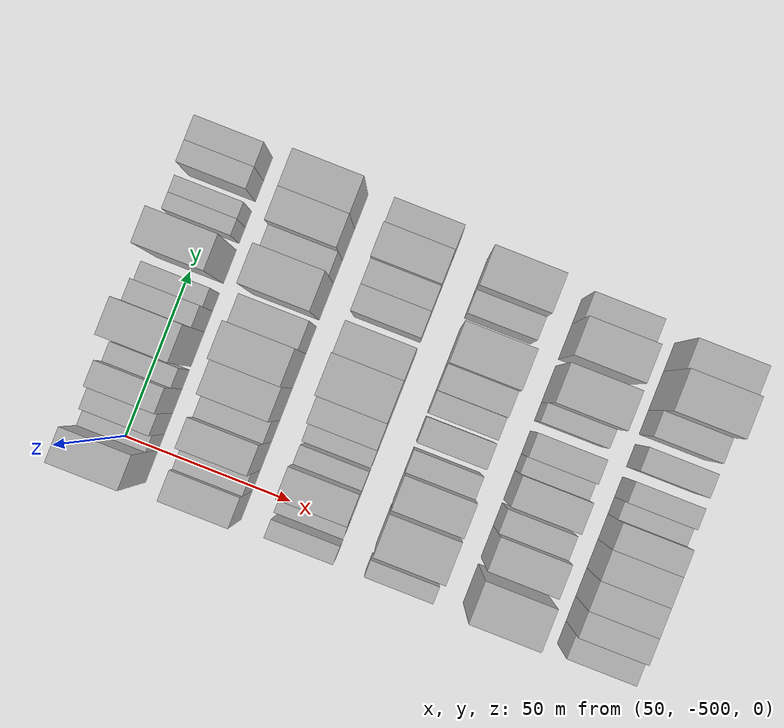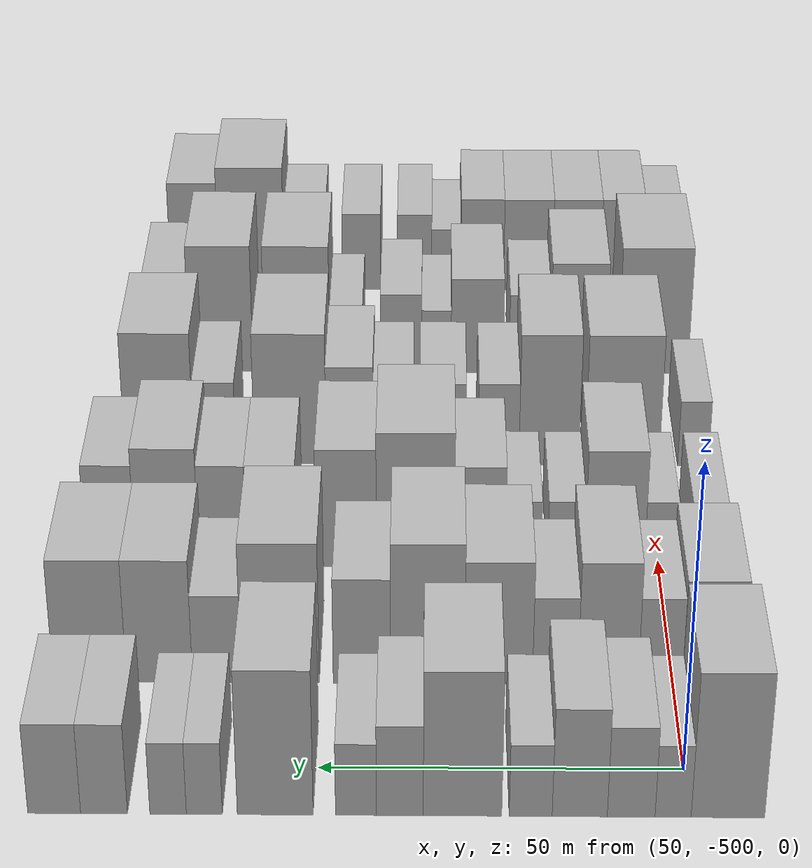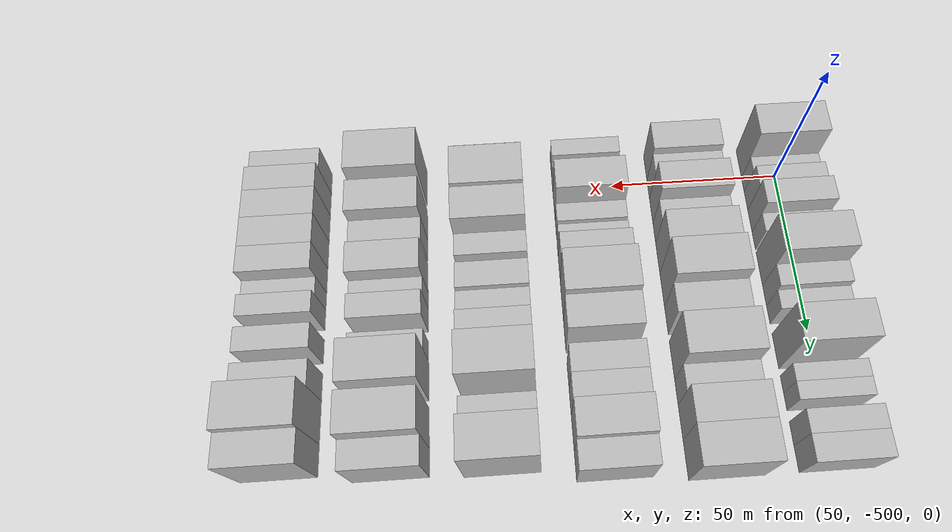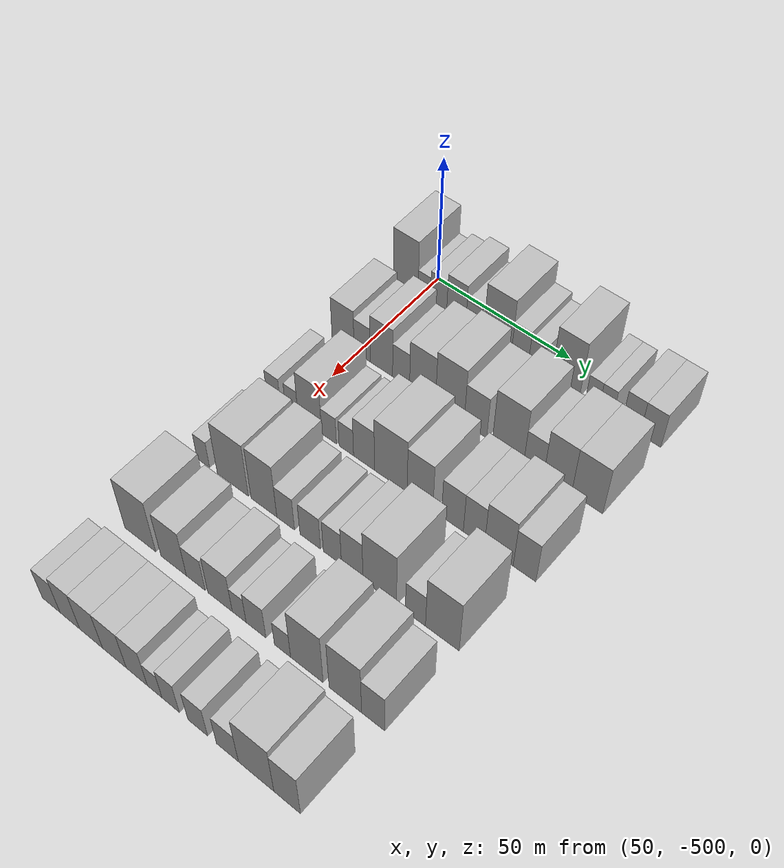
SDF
<sdf version="1.6">
 <world name="default">
  <model name="building_1">
   <static>1</static>
   <pose>50.0000 -505.0870 0 0.000000 0.000000 0.000000</pose>
   <link name="link">
    <pose>0 0 12.00 0 0 0</pose>
    <collision name="collision"><geometry><box><size>20.0000 9.8260 24.0000</size></box></geometry></collision>
    <visual name="visual">
     <cast_shadows>0</cast_shadows>
     <geometry><box><size>20.0000 9.8260 24.0000</size></box></geometry>
     <material>
      <script>
       <uri>model://HANNAS_wall/materials/scripts</uri>
       <uri>model://HANNAS_wall/materials/textures</uri>
       <name>vrc/HANNAS_wall</name>
      </script>
     </material>
    </visual>
   </link>
  </model>
  <model name="building_2">
   <static>1</static>
   <pose>50.0000 -497.7677 0 0.000000 0.000000 0.000000</pose>
   <link name="link">
    <pose>0 0 6.00 0 0 0</pose>
    <collision name="collision"><geometry><box><size>20.0000 4.8125 12.0000</size></box></geometry></collision>
    <visual name="visual">
     <cast_shadows>0</cast_shadows>
     <geometry><box><size>20.0000 4.8125 12.0000</size></box></geometry>
     <material>
      <script>
       <uri>model://HANNAS_wall/materials/scripts</uri>
       <uri>model://HANNAS_wall/materials/textures</uri>
       <name>vrc/HANNAS_wall</name>
      </script>
     </material>
    </visual>
   </link>
  </model>
  <model name="building_3">
   <static>1</static>
   <pose>50.0000 -492.1713 0 0.000000 0.000000 0.000000</pose>
   <link name="link">
    <pose>0 0 7.50 0 0 0</pose>
    <collision name="collision"><geometry><box><size>20.0000 6.3803 15.0000</size></box></geometry></collision>
    <visual name="visual">
     <cast_shadows>0</cast_shadows>
     <geometry><box><size>20.0000 6.3803 15.0000</size></box></geometry>
     <material>
      <script>
       <uri>model://HANNAS_wall/materials/scripts</uri>
       <uri>model://HANNAS_wall/materials/textures</uri>
       <name>vrc/HANNAS_wall</name>
      </script>
     </material>
    </visual>
   </link>
  </model>
  <model name="building_4">
   <static>1</static>
   <pose>50.0000 -485.2972 0 0.000000 0.000000 0.000000</pose>
   <link name="link">
    <pose>0 0 9.00 0 0 0</pose>
    <collision name="collision"><geometry><box><size>20.0000 7.3679 18.0000</size></box></geometry></collision>
    <visual name="visual">
     <cast_shadows>0</cast_shadows>
     <geometry><box><size>20.0000 7.3679 18.0000</size></box></geometry>
     <material>
      <script>
       <uri>model://HANNAS_wall/materials/scripts</uri>
       <uri>model://HANNAS_wall/materials/textures</uri>
       <name>vrc/HANNAS_wall</name>
      </script>
     </material>
    </visual>
   </link>
  </model>
  <model name="building_5">
   <static>1</static>
   <pose>50.0000 -478.7426 0 0.000000 0.000000 0.000000</pose>
   <link name="link">
    <pose>0 0 6.00 0 0 0</pose>
    <collision name="collision"><geometry><box><size>20.0000 5.7415 12.0000</size></box></geometry></collision>
    <visual name="visual">
     <cast_shadows>0</cast_shadows>
     <geometry><box><size>20.0000 5.7415 12.0000</size></box></geometry>
     <material>
      <script>
       <uri>model://HANNAS_wall/materials/scripts</uri>
       <uri>model://HANNAS_wall/materials/textures</uri>
       <name>vrc/HANNAS_wall</name>
      </script>
     </material>
    </visual>
   </link>
  </model>
  <model name="building_6">
   <static>1</static>
   <pose>50.0000 -469.6219 0 0.000000 0.000000 0.000000</pose>
   <link name="link">
    <pose>0 0 12.00 0 0 0</pose>
    <collision name="collision"><geometry><box><size>20.0000 10.4998 24.0000</size></box></geometry></collision>
    <visual name="visual">
     <cast_shadows>0</cast_shadows>
     <geometry><box><size>20.0000 10.4998 24.0000</size></box></geometry>
     <material>
      <script>
       <uri>model://HANNAS_wall/materials/scripts</uri>
       <uri>model://HANNAS_wall/materials/textures</uri>
       <name>vrc/HANNAS_wall</name>
      </script>
     </material>
    </visual>
   </link>
  </model>
  <model name="building_7">
   <static>1</static>
   <pose>50.0000 -461.2395 0 0.000000 0.000000 0.000000</pose>
   <link name="link">
    <pose>0 0 7.50 0 0 0</pose>
    <collision name="collision"><geometry><box><size>20.0000 6.2650 15.0000</size></box></geometry></collision>
    <visual name="visual">
     <cast_shadows>0</cast_shadows>
     <geometry><box><size>20.0000 6.2650 15.0000</size></box></geometry>
     <material>
      <script>
       <uri>model://HANNAS_wall/materials/scripts</uri>
       <uri>model://HANNAS_wall/materials/textures</uri>
       <name>vrc/HANNAS_wall</name>
      </script>
     </material>
    </visual>
   </link>
  </model>
  <model name="building_8">
   <static>1</static>
   <pose>50.0000 -455.3796 0 0.000000 0.000000 0.000000</pose>
   <link name="link">
    <pose>0 0 6.00 0 0 0</pose>
    <collision name="collision"><geometry><box><size>20.0000 5.4549 12.0000</size></box></geometry></collision>
    <visual name="visual">
     <cast_shadows>0</cast_shadows>
     <geometry><box><size>20.0000 5.4549 12.0000</size></box></geometry>
     <material>
      <script>
       <uri>model://HANNAS_wall/materials/scripts</uri>
       <uri>model://HANNAS_wall/materials/textures</uri>
       <name>vrc/HANNAS_wall</name>
      </script>
     </material>
    </visual>
   </link>
  </model>
  <model name="building_9">
   <static>1</static>
   <pose>50.0000 -444.5758 0 0.000000 0.000000 0.000000</pose>
   <link name="link">
    <pose>0 0 12.00 0 0 0</pose>
    <collision name="collision"><geometry><box><size>20.0000 10.1526 24.0000</size></box></geometry></collision>
    <visual name="visual">
     <cast_shadows>0</cast_shadows>
     <geometry><box><size>20.0000 10.1526 24.0000</size></box></geometry>
     <material>
      <script>
       <uri>model://HANNAS_wall/materials/scripts</uri>
       <uri>model://HANNAS_wall/materials/textures</uri>
       <name>vrc/HANNAS_wall</name>
      </script>
     </material>
    </visual>
   </link>
  </model>
  <model name="building_10">
   <static>1</static>
   <pose>50.0000 -435.0902 0 0.000000 0.000000 0.000000</pose>
   <link name="link">
    <pose>0 0 6.00 0 0 0</pose>
    <collision name="collision"><geometry><box><size>20.0000 4.8186 12.0000</size></box></geometry></collision>
    <visual name="visual">
     <cast_shadows>0</cast_shadows>
     <geometry><box><size>20.0000 4.8186 12.0000</size></box></geometry>
     <material>
      <script>
       <uri>model://HANNAS_wall/materials/scripts</uri>
       <uri>model://HANNAS_wall/materials/textures</uri>
       <name>vrc/HANNAS_wall</name>
      </script>
     </material>
    </visual>
   </link>
  </model>
  <model name="building_11">
   <static>1</static>
   <pose>50.0000 -430.2362 0 0.000000 0.000000 0.000000</pose>
   <link name="link">
    <pose>0 0 6.00 0 0 0</pose>
    <collision name="collision"><geometry><box><size>20.0000 4.8894 12.0000</size></box></geometry></collision>
    <visual name="visual">
     <cast_shadows>0</cast_shadows>
     <geometry><box><size>20.0000 4.8894 12.0000</size></box></geometry>
     <material>
      <script>
       <uri>model://HANNAS_wall/materials/scripts</uri>
       <uri>model://HANNAS_wall/materials/textures</uri>
       <name>vrc/HANNAS_wall</name>
      </script>
     </material>
    </visual>
   </link>
  </model>
  <model name="building_12">
   <static>1</static>
   <pose>50.0000 -421.6519 0 0.000000 0.000000 0.000000</pose>
   <link name="link">
    <pose>0 0 7.50 0 0 0</pose>
    <collision name="collision"><geometry><box><size>20.0000 6.2792 15.0000</size></box></geometry></collision>
    <visual name="visual">
     <cast_shadows>0</cast_shadows>
     <geometry><box><size>20.0000 6.2792 15.0000</size></box></geometry>
     <material>
      <script>
       <uri>model://HANNAS_wall/materials/scripts</uri>
       <uri>model://HANNAS_wall/materials/textures</uri>
       <name>vrc/HANNAS_wall</name>
      </script>
     </material>
    </visual>
   </link>
  </model>
  <model name="building_13">
   <static>1</static>
   <pose>50.0000 -414.9698 0 0.000000 0.000000 0.000000</pose>
   <link name="link">
    <pose>0 0 7.50 0 0 0</pose>
    <collision name="collision"><geometry><box><size>20.0000 7.0849 15.0000</size></box></geometry></collision>
    <visual name="visual">
     <cast_shadows>0</cast_shadows>
     <geometry><box><size>20.0000 7.0849 15.0000</size></box></geometry>
     <material>
      <script>
       <uri>model://HANNAS_wall/materials/scripts</uri>
       <uri>model://HANNAS_wall/materials/textures</uri>
       <name>vrc/HANNAS_wall</name>
      </script>
     </material>
    </visual>
   </link>
  </model>
  <model name="building_116">
   <static>1</static>
   <pose>79.0000 -505.6173 0 0.000000 0.000000 0.000000</pose>
   <link name="link">
    <pose>0 0 9.00 0 0 0</pose>
    <collision name="collision"><geometry><box><size>20.0000 8.7653 18.0000</size></box></geometry></collision>
    <visual name="visual">
     <cast_shadows>0</cast_shadows>
     <geometry><box><size>20.0000 8.7653 18.0000</size></box></geometry>
     <material>
      <script>
       <uri>model://HANNAS_wall/materials/scripts</uri>
       <uri>model://HANNAS_wall/materials/textures</uri>
       <name>vrc/HANNAS_wall</name>
      </script>
     </material>
    </visual>
   </link>
  </model>
  <model name="building_117">
   <static>1</static>
   <pose>79.0000 -498.0807 0 0.000000 0.000000 0.000000</pose>
   <link name="link">
    <pose>0 0 7.50 0 0 0</pose>
    <collision name="collision"><geometry><box><size>20.0000 6.3080 15.0000</size></box></geometry></collision>
    <visual name="visual">
     <cast_shadows>0</cast_shadows>
     <geometry><box><size>20.0000 6.3080 15.0000</size></box></geometry>
     <material>
      <script>
       <uri>model://HANNAS_wall/materials/scripts</uri>
       <uri>model://HANNAS_wall/materials/textures</uri>
       <name>vrc/HANNAS_wall</name>
      </script>
     </material>
    </visual>
   </link>
  </model>
  <model name="building_118">
   <static>1</static>
   <pose>79.0000 -490.6231 0 0.000000 0.000000 0.000000</pose>
   <link name="link">
    <pose>0 0 10.50 0 0 0</pose>
    <collision name="collision"><geometry><box><size>20.0000 8.6072 21.0000</size></box></geometry></collision>
    <visual name="visual">
     <cast_shadows>0</cast_shadows>
     <geometry><box><size>20.0000 8.6072 21.0000</size></box></geometry>
     <material>
      <script>
       <uri>model://HANNAS_wall/materials/scripts</uri>
       <uri>model://HANNAS_wall/materials/textures</uri>
       <name>vrc/HANNAS_wall</name>
      </script>
     </material>
    </visual>
   </link>
  </model>
  <model name="building_119">
   <static>1</static>
   <pose>79.0000 -483.0925 0 0.000000 0.000000 0.000000</pose>
   <link name="link">
    <pose>0 0 7.50 0 0 0</pose>
    <collision name="collision"><geometry><box><size>20.0000 6.4540 15.0000</size></box></geometry></collision>
    <visual name="visual">
     <cast_shadows>0</cast_shadows>
     <geometry><box><size>20.0000 6.4540 15.0000</size></box></geometry>
     <material>
      <script>
       <uri>model://HANNAS_wall/materials/scripts</uri>
       <uri>model://HANNAS_wall/materials/textures</uri>
       <name>vrc/HANNAS_wall</name>
      </script>
     </material>
    </visual>
   </link>
  </model>
  <model name="building_120">
   <static>1</static>
   <pose>79.0000 -475.0134 0 0.000000 0.000000 0.000000</pose>
   <link name="link">
    <pose>0 0 10.50 0 0 0</pose>
    <collision name="collision"><geometry><box><size>20.0000 9.7041 21.0000</size></box></geometry></collision>
    <visual name="visual">
     <cast_shadows>0</cast_shadows>
     <geometry><box><size>20.0000 9.7041 21.0000</size></box></geometry>
     <material>
      <script>
       <uri>model://HANNAS_wall/materials/scripts</uri>
       <uri>model://HANNAS_wall/materials/textures</uri>
       <name>vrc/HANNAS_wall</name>
      </script>
     </material>
    </visual>
   </link>
  </model>
  <model name="building_121">
   <static>1</static>
   <pose>79.0000 -464.8946 0 0.000000 0.000000 0.000000</pose>
   <link name="link">
    <pose>0 0 12.00 0 0 0</pose>
    <collision name="collision"><geometry><box><size>20.0000 10.5334 24.0000</size></box></geometry></collision>
    <visual name="visual">
     <cast_shadows>0</cast_shadows>
     <geometry><box><size>20.0000 10.5334 24.0000</size></box></geometry>
     <material>
      <script>
       <uri>model://HANNAS_wall/materials/scripts</uri>
       <uri>model://HANNAS_wall/materials/textures</uri>
       <name>vrc/HANNAS_wall</name>
      </script>
     </material>
    </visual>
   </link>
  </model>
  <model name="building_122">
   <static>1</static>
   <pose>79.0000 -455.5403 0 0.000000 0.000000 0.000000</pose>
   <link name="link">
    <pose>0 0 9.00 0 0 0</pose>
    <collision name="collision"><geometry><box><size>20.0000 8.1752 18.0000</size></box></geometry></collision>
    <visual name="visual">
     <cast_shadows>0</cast_shadows>
     <geometry><box><size>20.0000 8.1752 18.0000</size></box></geometry>
     <material>
      <script>
       <uri>model://HANNAS_wall/materials/scripts</uri>
       <uri>model://HANNAS_wall/materials/textures</uri>
       <name>vrc/HANNAS_wall</name>
      </script>
     </material>
    </visual>
   </link>
  </model>
  <model name="building_123">
   <static>1</static>
   <pose>79.0000 -443.8803 0 0.000000 0.000000 0.000000</pose>
   <link name="link">
    <pose>0 0 12.00 0 0 0</pose>
    <collision name="collision"><geometry><box><size>20.0000 11.1447 24.0000</size></box></geometry></collision>
    <visual name="visual">
     <cast_shadows>0</cast_shadows>
     <geometry><box><size>20.0000 11.1447 24.0000</size></box></geometry>
     <material>
      <script>
       <uri>model://HANNAS_wall/materials/scripts</uri>
       <uri>model://HANNAS_wall/materials/textures</uri>
       <name>vrc/HANNAS_wall</name>
      </script>
     </material>
    </visual>
   </link>
  </model>
  <model name="building_124">
   <static>1</static>
   <pose>79.0000 -434.8327 0 0.000000 0.000000 0.000000</pose>
   <link name="link">
    <pose>0 0 7.50 0 0 0</pose>
    <collision name="collision"><geometry><box><size>20.0000 6.9504 15.0000</size></box></geometry></collision>
    <visual name="visual">
     <cast_shadows>0</cast_shadows>
     <geometry><box><size>20.0000 6.9504 15.0000</size></box></geometry>
     <material>
      <script>
       <uri>model://HANNAS_wall/materials/scripts</uri>
       <uri>model://HANNAS_wall/materials/textures</uri>
       <name>vrc/HANNAS_wall</name>
      </script>
     </material>
    </visual>
   </link>
  </model>
  <model name="building_125">
   <static>1</static>
   <pose>79.0000 -426.6256 0 0.000000 0.000000 0.000000</pose>
   <link name="link">
    <pose>0 0 10.50 0 0 0</pose>
    <collision name="collision"><geometry><box><size>20.0000 9.4638 21.0000</size></box></geometry></collision>
    <visual name="visual">
     <cast_shadows>0</cast_shadows>
     <geometry><box><size>20.0000 9.4638 21.0000</size></box></geometry>
     <material>
      <script>
       <uri>model://HANNAS_wall/materials/scripts</uri>
       <uri>model://HANNAS_wall/materials/textures</uri>
       <name>vrc/HANNAS_wall</name>
      </script>
     </material>
    </visual>
   </link>
  </model>
  <model name="building_126">
   <static>1</static>
   <pose>79.0000 -416.6605 0 0.000000 0.000000 0.000000</pose>
   <link name="link">
    <pose>0 0 10.50 0 0 0</pose>
    <collision name="collision"><geometry><box><size>20.0000 10.4664 21.0000</size></box></geometry></collision>
    <visual name="visual">
     <cast_shadows>0</cast_shadows>
     <geometry><box><size>20.0000 10.4664 21.0000</size></box></geometry>
     <material>
      <script>
       <uri>model://HANNAS_wall/materials/scripts</uri>
       <uri>model://HANNAS_wall/materials/textures</uri>
       <name>vrc/HANNAS_wall</name>
      </script>
     </material>
    </visual>
   </link>
  </model>
  <model name="building_219">
   <static>1</static>
   <pose>108.0000 -507.3230 0 0.000000 0.000000 0.000000</pose>
   <link name="link">
    <pose>0 0 6.00 0 0 0</pose>
    <collision name="collision"><geometry><box><size>20.0000 5.3541 12.0000</size></box></geometry></collision>
    <visual name="visual">
     <cast_shadows>0</cast_shadows>
     <geometry><box><size>20.0000 5.3541 12.0000</size></box></geometry>
     <material>
      <script>
       <uri>model://HANNAS_wall/materials/scripts</uri>
       <uri>model://HANNAS_wall/materials/textures</uri>
       <name>vrc/HANNAS_wall</name>
      </script>
     </material>
    </visual>
   </link>
  </model>
  <model name="building_220">
   <static>1</static>
   <pose>108.0000 -500.1919 0 0.000000 0.000000 0.000000</pose>
   <link name="link">
    <pose>0 0 6.00 0 0 0</pose>
    <collision name="collision"><geometry><box><size>20.0000 4.9080 12.0000</size></box></geometry></collision>
    <visual name="visual">
     <cast_shadows>0</cast_shadows>
     <geometry><box><size>20.0000 4.9080 12.0000</size></box></geometry>
     <material>
      <script>
       <uri>model://HANNAS_wall/materials/scripts</uri>
       <uri>model://HANNAS_wall/materials/textures</uri>
       <name>vrc/HANNAS_wall</name>
      </script>
     </material>
    </visual>
   </link>
  </model>
  <model name="building_221">
   <static>1</static>
   <pose>108.0000 -493.2043 0 0.000000 0.000000 0.000000</pose>
   <link name="link">
    <pose>0 0 10.50 0 0 0</pose>
    <collision name="collision"><geometry><box><size>20.0000 9.0672 21.0000</size></box></geometry></collision>
    <visual name="visual">
     <cast_shadows>0</cast_shadows>
     <geometry><box><size>20.0000 9.0672 21.0000</size></box></geometry>
     <material>
      <script>
       <uri>model://HANNAS_wall/materials/scripts</uri>
       <uri>model://HANNAS_wall/materials/textures</uri>
       <name>vrc/HANNAS_wall</name>
      </script>
     </material>
    </visual>
   </link>
  </model>
  <model name="building_222">
   <static>1</static>
   <pose>108.0000 -485.8665 0 0.000000 0.000000 0.000000</pose>
   <link name="link">
    <pose>0 0 6.00 0 0 0</pose>
    <collision name="collision"><geometry><box><size>20.0000 5.6085 12.0000</size></box></geometry></collision>
    <visual name="visual">
     <cast_shadows>0</cast_shadows>
     <geometry><box><size>20.0000 5.6085 12.0000</size></box></geometry>
     <material>
      <script>
       <uri>model://HANNAS_wall/materials/scripts</uri>
       <uri>model://HANNAS_wall/materials/textures</uri>
       <name>vrc/HANNAS_wall</name>
      </script>
     </material>
    </visual>
   </link>
  </model>
  <model name="building_223">
   <static>1</static>
   <pose>108.0000 -479.3562 0 0.000000 0.000000 0.000000</pose>
   <link name="link">
    <pose>0 0 6.00 0 0 0</pose>
    <collision name="collision"><geometry><box><size>20.0000 5.4122 12.0000</size></box></geometry></collision>
    <visual name="visual">
     <cast_shadows>0</cast_shadows>
     <geometry><box><size>20.0000 5.4122 12.0000</size></box></geometry>
     <material>
      <script>
       <uri>model://HANNAS_wall/materials/scripts</uri>
       <uri>model://HANNAS_wall/materials/textures</uri>
       <name>vrc/HANNAS_wall</name>
      </script>
     </material>
    </visual>
   </link>
  </model>
  <model name="building_224">
   <static>1</static>
   <pose>108.0000 -472.7793 0 0.000000 0.000000 0.000000</pose>
   <link name="link">
    <pose>0 0 9.00 0 0 0</pose>
    <collision name="collision"><geometry><box><size>20.0000 7.7418 18.0000</size></box></geometry></collision>
    <visual name="visual">
     <cast_shadows>0</cast_shadows>
     <geometry><box><size>20.0000 7.7418 18.0000</size></box></geometry>
     <material>
      <script>
       <uri>model://HANNAS_wall/materials/scripts</uri>
       <uri>model://HANNAS_wall/materials/textures</uri>
       <name>vrc/HANNAS_wall</name>
      </script>
     </material>
    </visual>
   </link>
  </model>
  <model name="building_225">
   <static>1</static>
   <pose>108.0000 -463.0128 0 0.000000 0.000000 0.000000</pose>
   <link name="link">
    <pose>0 0 12.00 0 0 0</pose>
    <collision name="collision"><geometry><box><size>20.0000 11.7911 24.0000</size></box></geometry></collision>
    <visual name="visual">
     <cast_shadows>0</cast_shadows>
     <geometry><box><size>20.0000 11.7911 24.0000</size></box></geometry>
     <material>
      <script>
       <uri>model://HANNAS_wall/materials/scripts</uri>
       <uri>model://HANNAS_wall/materials/textures</uri>
       <name>vrc/HANNAS_wall</name>
      </script>
     </material>
    </visual>
   </link>
  </model>
  <model name="building_226">
   <static>1</static>
   <pose>108.0000 -452.5363 0 0.000000 0.000000 0.000000</pose>
   <link name="link">
    <pose>0 0 10.50 0 0 0</pose>
    <collision name="collision"><geometry><box><size>20.0000 9.1619 21.0000</size></box></geometry></collision>
    <visual name="visual">
     <cast_shadows>0</cast_shadows>
     <geometry><box><size>20.0000 9.1619 21.0000</size></box></geometry>
     <material>
      <script>
       <uri>model://HANNAS_wall/materials/scripts</uri>
       <uri>model://HANNAS_wall/materials/textures</uri>
       <name>vrc/HANNAS_wall</name>
      </script>
     </material>
    </visual>
   </link>
  </model>
  <model name="building_227">
   <static>1</static>
   <pose>108.0000 -441.1657 0 0.000000 0.000000 0.000000</pose>
   <link name="link">
    <pose>0 0 9.00 0 0 0</pose>
    <collision name="collision"><geometry><box><size>20.0000 7.5793 18.0000</size></box></geometry></collision>
    <visual name="visual">
     <cast_shadows>0</cast_shadows>
     <geometry><box><size>20.0000 7.5793 18.0000</size></box></geometry>
     <material>
      <script>
       <uri>model://HANNAS_wall/materials/scripts</uri>
       <uri>model://HANNAS_wall/materials/textures</uri>
       <name>vrc/HANNAS_wall</name>
      </script>
     </material>
    </visual>
   </link>
  </model>
  <model name="building_228">
   <static>1</static>
   <pose>108.0000 -433.7669 0 0.000000 0.000000 0.000000</pose>
   <link name="link">
    <pose>0 0 9.00 0 0 0</pose>
    <collision name="collision"><geometry><box><size>20.0000 7.2183 18.0000</size></box></geometry></collision>
    <visual name="visual">
     <cast_shadows>0</cast_shadows>
     <geometry><box><size>20.0000 7.2183 18.0000</size></box></geometry>
     <material>
      <script>
       <uri>model://HANNAS_wall/materials/scripts</uri>
       <uri>model://HANNAS_wall/materials/textures</uri>
       <name>vrc/HANNAS_wall</name>
      </script>
     </material>
    </visual>
   </link>
  </model>
  <model name="building_229">
   <static>1</static>
   <pose>108.0000 -425.3324 0 0.000000 0.000000 0.000000</pose>
   <link name="link">
    <pose>0 0 10.50 0 0 0</pose>
    <collision name="collision"><geometry><box><size>20.0000 9.6509 21.0000</size></box></geometry></collision>
    <visual name="visual">
     <cast_shadows>0</cast_shadows>
     <geometry><box><size>20.0000 9.6509 21.0000</size></box></geometry>
     <material>
      <script>
       <uri>model://HANNAS_wall/materials/scripts</uri>
       <uri>model://HANNAS_wall/materials/textures</uri>
       <name>vrc/HANNAS_wall</name>
      </script>
     </material>
    </visual>
   </link>
  </model>
  <model name="building_230">
   <static>1</static>
   <pose>108.0000 -416.7514 0 0.000000 0.000000 0.000000</pose>
   <link name="link">
    <pose>0 0 9.00 0 0 0</pose>
    <collision name="collision"><geometry><box><size>20.0000 7.5111 18.0000</size></box></geometry></collision>
    <visual name="visual">
     <cast_shadows>0</cast_shadows>
     <geometry><box><size>20.0000 7.5111 18.0000</size></box></geometry>
     <material>
      <script>
       <uri>model://HANNAS_wall/materials/scripts</uri>
       <uri>model://HANNAS_wall/materials/textures</uri>
       <name>vrc/HANNAS_wall</name>
      </script>
     </material>
    </visual>
   </link>
  </model>
  <model name="building_331">
   <static>1</static>
   <pose>137.0000 -507.5297 0 0.000000 0.000000 0.000000</pose>
   <link name="link">
    <pose>0 0 6.00 0 0 0</pose>
    <collision name="collision"><geometry><box><size>20.0000 4.9405 12.0000</size></box></geometry></collision>
    <visual name="visual">
     <cast_shadows>0</cast_shadows>
     <geometry><box><size>20.0000 4.9405 12.0000</size></box></geometry>
     <material>
      <script>
       <uri>model://HANNAS_wall/materials/scripts</uri>
       <uri>model://HANNAS_wall/materials/textures</uri>
       <name>vrc/HANNAS_wall</name>
      </script>
     </material>
    </visual>
   </link>
  </model>
  <model name="building_332">
   <static>1</static>
   <pose>137.0000 -496.1003 0 0.000000 0.000000 0.000000</pose>
   <link name="link">
    <pose>0 0 12.00 0 0 0</pose>
    <collision name="collision"><geometry><box><size>20.0000 11.9184 24.0000</size></box></geometry></collision>
    <visual name="visual">
     <cast_shadows>0</cast_shadows>
     <geometry><box><size>20.0000 11.9184 24.0000</size></box></geometry>
     <material>
      <script>
       <uri>model://HANNAS_wall/materials/scripts</uri>
       <uri>model://HANNAS_wall/materials/textures</uri>
       <name>vrc/HANNAS_wall</name>
      </script>
     </material>
    </visual>
   </link>
  </model>
  <model name="building_333">
   <static>1</static>
   <pose>137.0000 -484.3216 0 0.000000 0.000000 0.000000</pose>
   <link name="link">
    <pose>0 0 12.00 0 0 0</pose>
    <collision name="collision"><geometry><box><size>20.0000 9.6389 24.0000</size></box></geometry></collision>
    <visual name="visual">
     <cast_shadows>0</cast_shadows>
     <geometry><box><size>20.0000 9.6389 24.0000</size></box></geometry>
     <material>
      <script>
       <uri>model://HANNAS_wall/materials/scripts</uri>
       <uri>model://HANNAS_wall/materials/textures</uri>
       <name>vrc/HANNAS_wall</name>
      </script>
     </material>
    </visual>
   </link>
  </model>
  <model name="building_334">
   <static>1</static>
   <pose>137.0000 -476.2368 0 0.000000 0.000000 0.000000</pose>
   <link name="link">
    <pose>0 0 7.50 0 0 0</pose>
    <collision name="collision"><geometry><box><size>20.0000 6.5307 15.0000</size></box></geometry></collision>
    <visual name="visual">
     <cast_shadows>0</cast_shadows>
     <geometry><box><size>20.0000 6.5307 15.0000</size></box></geometry>
     <material>
      <script>
       <uri>model://HANNAS_wall/materials/scripts</uri>
       <uri>model://HANNAS_wall/materials/textures</uri>
       <name>vrc/HANNAS_wall</name>
      </script>
     </material>
    </visual>
   </link>
  </model>
  <model name="building_335">
   <static>1</static>
   <pose>137.0000 -467.2595 0 0.000000 0.000000 0.000000</pose>
   <link name="link">
    <pose>0 0 7.50 0 0 0</pose>
    <collision name="collision"><geometry><box><size>20.0000 7.4240 15.0000</size></box></geometry></collision>
    <visual name="visual">
     <cast_shadows>0</cast_shadows>
     <geometry><box><size>20.0000 7.4240 15.0000</size></box></geometry>
     <material>
      <script>
       <uri>model://HANNAS_wall/materials/scripts</uri>
       <uri>model://HANNAS_wall/materials/textures</uri>
       <name>vrc/HANNAS_wall</name>
      </script>
     </material>
    </visual>
   </link>
  </model>
  <model name="building_336">
   <static>1</static>
   <pose>137.0000 -459.3119 0 0.000000 0.000000 0.000000</pose>
   <link name="link">
    <pose>0 0 7.50 0 0 0</pose>
    <collision name="collision"><geometry><box><size>20.0000 6.4711 15.0000</size></box></geometry></collision>
    <visual name="visual">
     <cast_shadows>0</cast_shadows>
     <geometry><box><size>20.0000 6.4711 15.0000</size></box></geometry>
     <material>
      <script>
       <uri>model://HANNAS_wall/materials/scripts</uri>
       <uri>model://HANNAS_wall/materials/textures</uri>
       <name>vrc/HANNAS_wall</name>
      </script>
     </material>
    </visual>
   </link>
  </model>
  <model name="building_337">
   <static>1</static>
   <pose>137.0000 -452.3010 0 0.000000 0.000000 0.000000</pose>
   <link name="link">
    <pose>0 0 9.00 0 0 0</pose>
    <collision name="collision"><geometry><box><size>20.0000 7.5506 18.0000</size></box></geometry></collision>
    <visual name="visual">
     <cast_shadows>0</cast_shadows>
     <geometry><box><size>20.0000 7.5506 18.0000</size></box></geometry>
     <material>
      <script>
       <uri>model://HANNAS_wall/materials/scripts</uri>
       <uri>model://HANNAS_wall/materials/textures</uri>
       <name>vrc/HANNAS_wall</name>
      </script>
     </material>
    </visual>
   </link>
  </model>
  <model name="building_338">
   <static>1</static>
   <pose>137.0000 -442.7633 0 0.000000 0.000000 0.000000</pose>
   <link name="link">
    <pose>0 0 12.00 0 0 0</pose>
    <collision name="collision"><geometry><box><size>20.0000 11.5248 24.0000</size></box></geometry></collision>
    <visual name="visual">
     <cast_shadows>0</cast_shadows>
     <geometry><box><size>20.0000 11.5248 24.0000</size></box></geometry>
     <material>
      <script>
       <uri>model://HANNAS_wall/materials/scripts</uri>
       <uri>model://HANNAS_wall/materials/textures</uri>
       <name>vrc/HANNAS_wall</name>
      </script>
     </material>
    </visual>
   </link>
  </model>
  <model name="building_339">
   <static>1</static>
   <pose>137.0000 -430.6331 0 0.000000 0.000000 0.000000</pose>
   <link name="link">
    <pose>0 0 7.50 0 0 0</pose>
    <collision name="collision"><geometry><box><size>20.0000 6.7356 15.0000</size></box></geometry></collision>
    <visual name="visual">
     <cast_shadows>0</cast_shadows>
     <geometry><box><size>20.0000 6.7356 15.0000</size></box></geometry>
     <material>
      <script>
       <uri>model://HANNAS_wall/materials/scripts</uri>
       <uri>model://HANNAS_wall/materials/textures</uri>
       <name>vrc/HANNAS_wall</name>
      </script>
     </material>
    </visual>
   </link>
  </model>
  <model name="building_340">
   <static>1</static>
   <pose>137.0000 -421.7142 0 0.000000 0.000000 0.000000</pose>
   <link name="link">
    <pose>0 0 12.00 0 0 0</pose>
    <collision name="collision"><geometry><box><size>20.0000 11.1022 24.0000</size></box></geometry></collision>
    <visual name="visual">
     <cast_shadows>0</cast_shadows>
     <geometry><box><size>20.0000 11.1022 24.0000</size></box></geometry>
     <material>
      <script>
       <uri>model://HANNAS_wall/materials/scripts</uri>
       <uri>model://HANNAS_wall/materials/textures</uri>
       <name>vrc/HANNAS_wall</name>
      </script>
     </material>
    </visual>
   </link>
  </model>
  <model name="building_440">
   <static>1</static>
   <pose>166.0000 -503.0548 0 0.000000 0.000000 0.000000</pose>
   <link name="link">
    <pose>0 0 12.00 0 0 0</pose>
    <collision name="collision"><geometry><box><size>20.0000 11.8905 24.0000</size></box></geometry></collision>
    <visual name="visual">
     <cast_shadows>0</cast_shadows>
     <geometry><box><size>20.0000 11.8905 24.0000</size></box></geometry>
     <material>
      <script>
       <uri>model://HANNAS_wall/materials/scripts</uri>
       <uri>model://HANNAS_wall/materials/textures</uri>
       <name>vrc/HANNAS_wall</name>
      </script>
     </material>
    </visual>
   </link>
  </model>
  <model name="building_441">
   <static>1</static>
   <pose>166.0000 -490.3260 0 0.000000 0.000000 0.000000</pose>
   <link name="link">
    <pose>0 0 10.50 0 0 0</pose>
    <collision name="collision"><geometry><box><size>20.0000 9.5670 21.0000</size></box></geometry></collision>
    <visual name="visual">
     <cast_shadows>0</cast_shadows>
     <geometry><box><size>20.0000 9.5670 21.0000</size></box></geometry>
     <material>
      <script>
       <uri>model://HANNAS_wall/materials/scripts</uri>
       <uri>model://HANNAS_wall/materials/textures</uri>
       <name>vrc/HANNAS_wall</name>
      </script>
     </material>
    </visual>
   </link>
  </model>
  <model name="building_442">
   <static>1</static>
   <pose>166.0000 -482.0746 0 0.000000 0.000000 0.000000</pose>
   <link name="link">
    <pose>0 0 7.50 0 0 0</pose>
    <collision name="collision"><geometry><box><size>20.0000 6.9359 15.0000</size></box></geometry></collision>
    <visual name="visual">
     <cast_shadows>0</cast_shadows>
     <geometry><box><size>20.0000 6.9359 15.0000</size></box></geometry>
     <material>
      <script>
       <uri>model://HANNAS_wall/materials/scripts</uri>
       <uri>model://HANNAS_wall/materials/textures</uri>
       <name>vrc/HANNAS_wall</name>
      </script>
     </material>
    </visual>
   </link>
  </model>
  <model name="building_443">
   <static>1</static>
   <pose>166.0000 -473.1813 0 0.000000 0.000000 0.000000</pose>
   <link name="link">
    <pose>0 0 9.00 0 0 0</pose>
    <collision name="collision"><geometry><box><size>20.0000 8.8506 18.0000</size></box></geometry></collision>
    <visual name="visual">
     <cast_shadows>0</cast_shadows>
     <geometry><box><size>20.0000 8.8506 18.0000</size></box></geometry>
     <material>
      <script>
       <uri>model://HANNAS_wall/materials/scripts</uri>
       <uri>model://HANNAS_wall/materials/textures</uri>
       <name>vrc/HANNAS_wall</name>
      </script>
     </material>
    </visual>
   </link>
  </model>
  <model name="building_444">
   <static>1</static>
   <pose>166.0000 -466.2634 0 0.000000 0.000000 0.000000</pose>
   <link name="link">
    <pose>0 0 6.00 0 0 0</pose>
    <collision name="collision"><geometry><box><size>20.0000 4.9852 12.0000</size></box></geometry></collision>
    <visual name="visual">
     <cast_shadows>0</cast_shadows>
     <geometry><box><size>20.0000 4.9852 12.0000</size></box></geometry>
     <material>
      <script>
       <uri>model://HANNAS_wall/materials/scripts</uri>
       <uri>model://HANNAS_wall/materials/textures</uri>
       <name>vrc/HANNAS_wall</name>
      </script>
     </material>
    </visual>
   </link>
  </model>
  <model name="building_445">
   <static>1</static>
   <pose>166.0000 -460.2748 0 0.000000 0.000000 0.000000</pose>
   <link name="link">
    <pose>0 0 7.50 0 0 0</pose>
    <collision name="collision"><geometry><box><size>20.0000 6.9921 15.0000</size></box></geometry></collision>
    <visual name="visual">
     <cast_shadows>0</cast_shadows>
     <geometry><box><size>20.0000 6.9921 15.0000</size></box></geometry>
     <material>
      <script>
       <uri>model://HANNAS_wall/materials/scripts</uri>
       <uri>model://HANNAS_wall/materials/textures</uri>
       <name>vrc/HANNAS_wall</name>
      </script>
     </material>
    </visual>
   </link>
  </model>
  <model name="building_446">
   <static>1</static>
   <pose>166.0000 -450.9840 0 0.000000 0.000000 0.000000</pose>
   <link name="link">
    <pose>0 0 6.00 0 0 0</pose>
    <collision name="collision"><geometry><box><size>20.0000 5.5895 12.0000</size></box></geometry></collision>
    <visual name="visual">
     <cast_shadows>0</cast_shadows>
     <geometry><box><size>20.0000 5.5895 12.0000</size></box></geometry>
     <material>
      <script>
       <uri>model://HANNAS_wall/materials/scripts</uri>
       <uri>model://HANNAS_wall/materials/textures</uri>
       <name>vrc/HANNAS_wall</name>
      </script>
     </material>
    </visual>
   </link>
  </model>
  <model name="building_447">
   <static>1</static>
   <pose>166.0000 -442.6517 0 0.000000 0.000000 0.000000</pose>
   <link name="link">
    <pose>0 0 12.00 0 0 0</pose>
    <collision name="collision"><geometry><box><size>20.0000 11.0751 24.0000</size></box></geometry></collision>
    <visual name="visual">
     <cast_shadows>0</cast_shadows>
     <geometry><box><size>20.0000 11.0751 24.0000</size></box></geometry>
     <material>
      <script>
       <uri>model://HANNAS_wall/materials/scripts</uri>
       <uri>model://HANNAS_wall/materials/textures</uri>
       <name>vrc/HANNAS_wall</name>
      </script>
     </material>
    </visual>
   </link>
  </model>
  <model name="building_448">
   <static>1</static>
   <pose>166.0000 -429.7397 0 0.000000 0.000000 0.000000</pose>
   <link name="link">
    <pose>0 0 12.00 0 0 0</pose>
    <collision name="collision"><geometry><box><size>20.0000 10.7488 24.0000</size></box></geometry></collision>
    <visual name="visual">
     <cast_shadows>0</cast_shadows>
     <geometry><box><size>20.0000 10.7488 24.0000</size></box></geometry>
     <material>
      <script>
       <uri>model://HANNAS_wall/materials/scripts</uri>
       <uri>model://HANNAS_wall/materials/textures</uri>
       <name>vrc/HANNAS_wall</name>
      </script>
     </material>
    </visual>
   </link>
  </model>
  <model name="building_449">
   <static>1</static>
   <pose>166.0000 -420.5986 0 0.000000 0.000000 0.000000</pose>
   <link name="link">
    <pose>0 0 9.00 0 0 0</pose>
    <collision name="collision"><geometry><box><size>20.0000 7.5335 18.0000</size></box></geometry></collision>
    <visual name="visual">
     <cast_shadows>0</cast_shadows>
     <geometry><box><size>20.0000 7.5335 18.0000</size></box></geometry>
     <material>
      <script>
       <uri>model://HANNAS_wall/materials/scripts</uri>
       <uri>model://HANNAS_wall/materials/textures</uri>
       <name>vrc/HANNAS_wall</name>
      </script>
     </material>
    </visual>
   </link>
  </model>
  <model name="building_560">
   <static>1</static>
   <pose>195.0000 -506.5681 0 0.000000 0.000000 0.000000</pose>
   <link name="link">
    <pose>0 0 7.50 0 0 0</pose>
    <collision name="collision"><geometry><box><size>20.0000 6.8638 15.0000</size></box></geometry></collision>
    <visual name="visual">
     <cast_shadows>0</cast_shadows>
     <geometry><box><size>20.0000 6.8638 15.0000</size></box></geometry>
     <material>
      <script>
       <uri>model://HANNAS_wall/materials/scripts</uri>
       <uri>model://HANNAS_wall/materials/textures</uri>
       <name>vrc/HANNAS_wall</name>
      </script>
     </material>
    </visual>
   </link>
  </model>
  <model name="building_561">
   <static>1</static>
   <pose>195.0000 -499.3683 0 0.000000 0.000000 0.000000</pose>
   <link name="link">
    <pose>0 0 9.00 0 0 0</pose>
    <collision name="collision"><geometry><box><size>20.0000 7.5359 18.0000</size></box></geometry></collision>
    <visual name="visual">
     <cast_shadows>0</cast_shadows>
     <geometry><box><size>20.0000 7.5359 18.0000</size></box></geometry>
     <material>
      <script>
       <uri>model://HANNAS_wall/materials/scripts</uri>
       <uri>model://HANNAS_wall/materials/textures</uri>
       <name>vrc/HANNAS_wall</name>
      </script>
     </material>
    </visual>
   </link>
  </model>
  <model name="building_562">
   <static>1</static>
   <pose>195.0000 -491.3368 0 0.000000 0.000000 0.000000</pose>
   <link name="link">
    <pose>0 0 9.00 0 0 0</pose>
    <collision name="collision"><geometry><box><size>20.0000 8.5272 18.0000</size></box></geometry></collision>
    <visual name="visual">
     <cast_shadows>0</cast_shadows>
     <geometry><box><size>20.0000 8.5272 18.0000</size></box></geometry>
     <material>
      <script>
       <uri>model://HANNAS_wall/materials/scripts</uri>
       <uri>model://HANNAS_wall/materials/textures</uri>
       <name>vrc/HANNAS_wall</name>
      </script>
     </material>
    </visual>
   </link>
  </model>
  <model name="building_563">
   <static>1</static>
   <pose>195.0000 -482.6931 0 0.000000 0.000000 0.000000</pose>
   <link name="link">
    <pose>0 0 9.00 0 0 0</pose>
    <collision name="collision"><geometry><box><size>20.0000 8.7601 18.0000</size></box></geometry></collision>
    <visual name="visual">
     <cast_shadows>0</cast_shadows>
     <geometry><box><size>20.0000 8.7601 18.0000</size></box></geometry>
     <material>
      <script>
       <uri>model://HANNAS_wall/materials/scripts</uri>
       <uri>model://HANNAS_wall/materials/textures</uri>
       <name>vrc/HANNAS_wall</name>
      </script>
     </material>
    </visual>
   </link>
  </model>
  <model name="building_564">
   <static>1</static>
   <pose>195.0000 -474.4942 0 0.000000 0.000000 0.000000</pose>
   <link name="link">
    <pose>0 0 9.00 0 0 0</pose>
    <collision name="collision"><geometry><box><size>20.0000 7.6378 18.0000</size></box></geometry></collision>
    <visual name="visual">
     <cast_shadows>0</cast_shadows>
     <geometry><box><size>20.0000 7.6378 18.0000</size></box></geometry>
     <material>
      <script>
       <uri>model://HANNAS_wall/materials/scripts</uri>
       <uri>model://HANNAS_wall/materials/textures</uri>
       <name>vrc/HANNAS_wall</name>
      </script>
     </material>
    </visual>
   </link>
  </model>
  <model name="building_565">
   <static>1</static>
   <pose>195.0000 -468.0621 0 0.000000 0.000000 0.000000</pose>
   <link name="link">
    <pose>0 0 6.00 0 0 0</pose>
    <collision name="collision"><geometry><box><size>20.0000 5.2266 12.0000</size></box></geometry></collision>
    <visual name="visual">
     <cast_shadows>0</cast_shadows>
     <geometry><box><size>20.0000 5.2266 12.0000</size></box></geometry>
     <material>
      <script>
       <uri>model://HANNAS_wall/materials/scripts</uri>
       <uri>model://HANNAS_wall/materials/textures</uri>
       <name>vrc/HANNAS_wall</name>
      </script>
     </material>
    </visual>
   </link>
  </model>
  <model name="building_566">
   <static>1</static>
   <pose>195.0000 -462.4095 0 0.000000 0.000000 0.000000</pose>
   <link name="link">
    <pose>0 0 7.50 0 0 0</pose>
    <collision name="collision"><geometry><box><size>20.0000 6.0786 15.0000</size></box></geometry></collision>
    <visual name="visual">
     <cast_shadows>0</cast_shadows>
     <geometry><box><size>20.0000 6.0786 15.0000</size></box></geometry>
     <material>
      <script>
       <uri>model://HANNAS_wall/materials/scripts</uri>
       <uri>model://HANNAS_wall/materials/textures</uri>
       <name>vrc/HANNAS_wall</name>
      </script>
     </material>
    </visual>
   </link>
  </model>
  <model name="building_567">
   <static>1</static>
   <pose>195.0000 -452.9513 0 0.000000 0.000000 0.000000</pose>
   <link name="link">
    <pose>0 0 7.50 0 0 0</pose>
    <collision name="collision"><geometry><box><size>20.0000 6.8377 15.0000</size></box></geometry></collision>
    <visual name="visual">
     <cast_shadows>0</cast_shadows>
     <geometry><box><size>20.0000 6.8377 15.0000</size></box></geometry>
     <material>
      <script>
       <uri>model://HANNAS_wall/materials/scripts</uri>
       <uri>model://HANNAS_wall/materials/textures</uri>
       <name>vrc/HANNAS_wall</name>
      </script>
     </material>
    </visual>
   </link>
  </model>
  <model name="building_568">
   <static>1</static>
   <pose>195.0000 -442.8298 0 0.000000 0.000000 0.000000</pose>
   <link name="link">
    <pose>0 0 7.50 0 0 0</pose>
    <collision name="collision"><geometry><box><size>20.0000 7.4053 15.0000</size></box></geometry></collision>
    <visual name="visual">
     <cast_shadows>0</cast_shadows>
     <geometry><box><size>20.0000 7.4053 15.0000</size></box></geometry>
     <material>
      <script>
       <uri>model://HANNAS_wall/materials/scripts</uri>
       <uri>model://HANNAS_wall/materials/textures</uri>
       <name>vrc/HANNAS_wall</name>
      </script>
     </material>
    </visual>
   </link>
  </model>
  <model name="building_569">
   <static>1</static>
   <pose>195.0000 -433.2647 0 0.000000 0.000000 0.000000</pose>
   <link name="link">
    <pose>0 0 12.00 0 0 0</pose>
    <collision name="collision"><geometry><box><size>20.0000 11.7249 24.0000</size></box></geometry></collision>
    <visual name="visual">
     <cast_shadows>0</cast_shadows>
     <geometry><box><size>20.0000 11.7249 24.0000</size></box></geometry>
     <material>
      <script>
       <uri>model://HANNAS_wall/materials/scripts</uri>
       <uri>model://HANNAS_wall/materials/textures</uri>
       <name>vrc/HANNAS_wall</name>
      </script>
     </material>
    </visual>
   </link>
  </model>
  <model name="building_570">
   <static>1</static>
   <pose>195.0000 -423.1095 0 0.000000 0.000000 0.000000</pose>
   <link name="link">
    <pose>0 0 10.50 0 0 0</pose>
    <collision name="collision"><geometry><box><size>20.0000 8.5853 21.0000</size></box></geometry></collision>
    <visual name="visual">
     <cast_shadows>0</cast_shadows>
     <geometry><box><size>20.0000 8.5853 21.0000</size></box></geometry>
     <material>
      <script>
       <uri>model://HANNAS_wall/materials/scripts</uri>
       <uri>model://HANNAS_wall/materials/textures</uri>
       <name>vrc/HANNAS_wall</name>
      </script>
     </material>
    </visual>
   </link>
  </model>
 </world>
</sdf>
